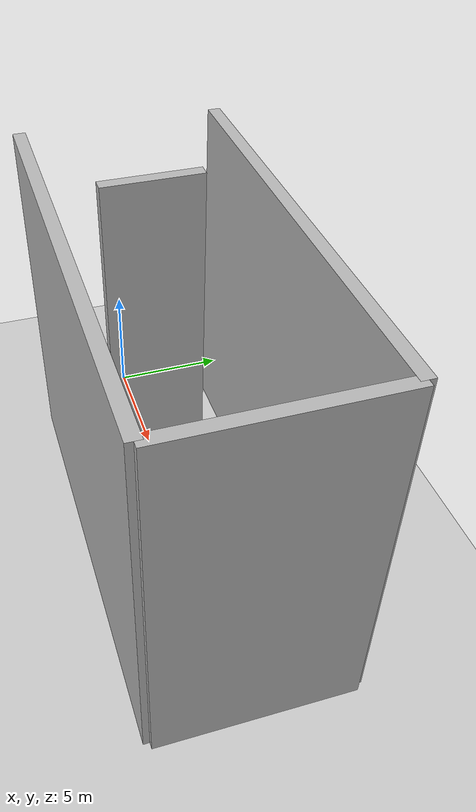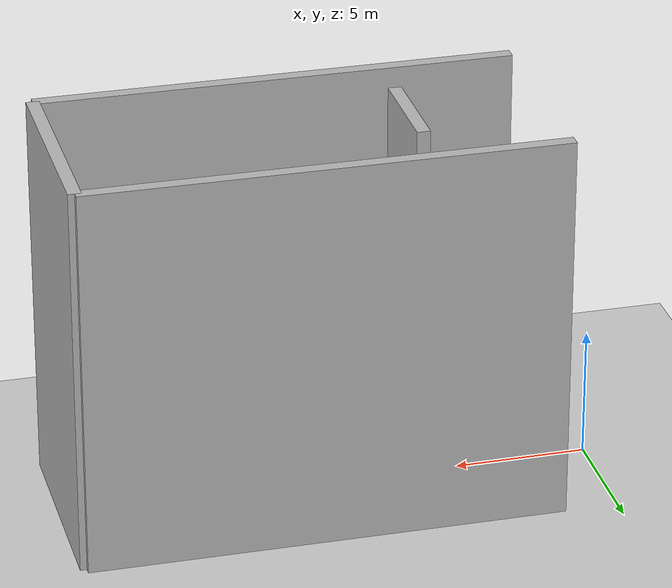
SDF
<sdf version="1.7">
 <world name="default">
  <plugin name="gazebo_ros_state" filename="libgazebo_ros_state.so">
   <ros>
    <namespace>/plug</namespace>
    <argument>model_states:=model_states_plug</argument>
    <argument>link_states:=link_states_plug</argument>
   </ros>
   <update_rate>100.0</update_rate>
  </plugin>
  <light name="sun" type="directional">
   <pose>0 0 10 0 -0 0</pose>
   <diffuse>0.8 0.8 0.8 1</diffuse>
   <specular>0.2 0.2 0.2 1</specular>
   <attenuation>
    <range>1000</range>
    <constant>0.9</constant>
    <linear>0.01</linear>
    <quadratic>0.001</quadratic>
   </attenuation>
   <direction>-0.5 0.1 -0.9</direction>
   <spot><inner_angle>0</inner_angle><outer_angle>0</outer_angle><falloff>0</falloff></spot>
  </light>
  <model name="ground_plane">
   <static>1</static>
   <link name="link">
    <collision name="collision">
     <geometry><plane><normal>0 0 1</normal><size>100 100</size></plane></geometry>
     <surface><friction><ode><mu>100</mu><mu2>50</mu2></ode></friction></surface>
    </collision>
    <visual name="visual">
     <cast_shadows>0</cast_shadows>
     <geometry><plane><normal>0 0 1</normal><size>100 100</size></plane></geometry>
     <material>
      <script><uri>file://media/materials/scripts/gazebo.material</uri><name>Gazebo/Grey</name></script>
     </material>
    </visual>
   </link>
  </model>
  <gravity>0 0 -9.8</gravity>
  <magnetic_field>6e-06 2.3e-05 -4.2e-05</magnetic_field>
  <atmosphere type="adiabatic"/>
  <physics type="ode">
   <max_step_size>0.001</max_step_size>
   <real_time_factor>1</real_time_factor>
   <real_time_update_rate>1000</real_time_update_rate>
  </physics>
  <scene><ambient>0.4 0.4 0.4 1</ambient><background>0.7 0.7 0.7 1</background><shadows>1</shadows></scene>
  <audio><device>default</device></audio>
  <spherical_coordinates>
   <surface_model>EARTH_WGS84</surface_model>
   <latitude_deg>0</latitude_deg>
   <longitude_deg>0</longitude_deg>
   <elevation>0</elevation>
   <heading_deg>0</heading_deg>
  </spherical_coordinates>
  <model name="wall_bottom">
   <static>1</static>
   <link name="link">
    <collision name="collision"><geometry><box><size>18 0.5 15</size></box></geometry></collision>
    <visual name="visual"><geometry><box><size>18 0.5 15</size></box></geometry></visual>
   </link>
   <pose>11 -4 7.5 0 -0 0</pose>
  </model>
  <model name="wall_top">
   <static>1</static>
   <link name="link">
    <collision name="collision"><geometry><box><size>18 0.5 15</size></box></geometry></collision>
    <visual name="visual"><geometry><box><size>18 0.5 15</size></box></geometry></visual>
   </link>
   <pose>11 4 7.5 0 -0 0</pose>
  </model>
  <model name="wall_right">
   <static>1</static>
   <link name="link">
    <collision name="collision"><geometry><box><size>8 0.5 15</size></box></geometry></collision>
    <visual name="visual"><geometry><box><size>8 0.5 15</size></box></geometry></visual>
   </link>
   <pose>20 0 7.5 0 -0 1.5708</pose>
  </model>
  <model name="wall_inner">
   <static>1</static>
   <link name="link">
    <collision name="collision"><geometry><box><size>4 0.5 15</size></box></geometry></collision>
    <visual name="visual"><geometry><box><size>4 0.5 15</size></box></geometry></visual>
   </link>
   <pose>7 0 7.5 0 -0 1.5708</pose>
  </model>
 </world>
</sdf>
